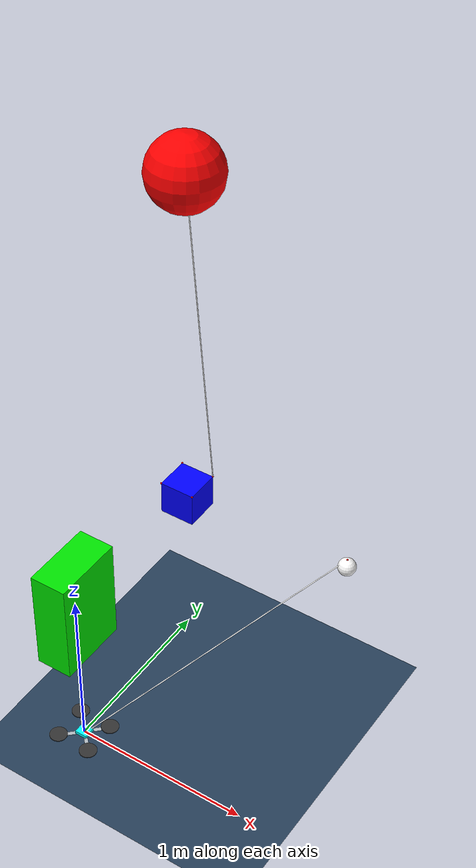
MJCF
<mujoco model="MuJoCo Model">
  <!--Compiler Options-->
  <compiler angle="radian"/>
  <option timestep="0.001" gravity="0 0 -9.81" density="1.225" viscosity="1.8e-05" integrator="RK4" jacobian="sparse">
    <flag energy="enable" contact="enable"/>
  </option>

  <visual>
    <headlight diffuse="0.6 0.6 0.6" ambient="0.3 0.3 0.3" specular="0 0 0"/>
    <rgba haze="0.15 0.25 0.35 1"/>
    <global azimuth="-20" elevation="-20" ellipsoidinertia="true"/>
  </visual>

  <asset>
    <texture type="skybox" builtin="gradient" rgb1="0.3 0.5 0.7" rgb2="0 0 0" width="512" height="3072"/>
    <texture type="2d" name="groundplane" builtin="checker" mark="edge" rgb1="0.2 0.3 0.4" rgb2="0.1 0.2 0.3"
      markrgb="0.8 0.8 0.8" width="300" height="300"/>
    <material name="groundplane" texture="groundplane" texuniform="true" texrepeat="5 5" reflectance="0.2"/>
  </asset>

  <default>
        <site type="sphere" rgba="1 0 0 1" size="0.005"/>
        <tendon limited="true" width="0.003" rgba="1 1 1 1"/>
        <geom friction=".2"/>
  </default>

  <worldbody>
    <light pos="0 0 1.5" dir="0 0 -1" directional="true"/>
    <geom name="floor" size="0 0 0.05" type="plane" material="groundplane"/>

    <camera name="Upper_view" pos="0.0 0.0 6.0" quat="1 0.0 0.0 0.0" mode="trackcom"/>
    <camera name="Track_view" pos="0 -1 .5" quat="0.707 0.70 0.0 0.0" mode="trackcom"/>

    <!-- System Models -->
    <!-- Block fized postion, free rotation -->
    <body name="block_1" pos="0 0 1">
      <joint pos="0 0 0" type="ball" actuatorfrclimited="false" damping="0.03"/>
      <geom name="block_1" size="0.1 0.2 0.3" type="box" rgba="0 0.9 0 1" mass="1.0"/>
    </body>

    <!-- Free body only in xyz axis -->
    <body name="floating_box" pos="0 1 3">
        <joint name="joint_x" pos="0 0 0" type="slide" axis="1 0 0" limited="true" range="-3 3" damping="100"/>
        <joint name="joint_y" pos="0 0 0" type="slide" axis="0 1 0" limited="true" range="-3 3" damping="100"/>
        <joint name="joint_z" pos="0 0 0" type="slide" axis="0 0 1" limited="true" range="-0.5 0.5" damping="100"/>
      <geom name="floating_box" size="0.2" type="sphere" rgba="1 0 0 1"/>
      <site name="origin0" pos="0 0 0"/>
    </body>

    <!-- Free body -->
    <body name="box_3" pos="0 1 1">
      <joint name="free_joint" pos="0 0 0" type="free" damping="1"/>
      <geom name="box_3" size="0.1 0.1 0.1" type="box" rgba="0 0 1 1"/>
      <site name="insertion0" pos="0.1 0.1 0.1"/>
      <site name="insertion1" pos="-0.1 0.1 0.1"/>
      <site name="insertion2" pos="-0.1 -0.1 0.1"/>
      <site name="insertion3" pos="0.1 -0.1 0.1"/>
    </body>

    <!-- Quadrotor body -->
    <body name="drone" pos="0 0 0" euler="0 0 0">
      <joint name="root_drone" type="free" damping="0.03" armature="0" pos="0 0 0"/>
      <!--Friction only for the core of the quadrotor-->
      <geom name="core" type="box" pos="0 0 0" quat="1. 0. 0. 0" size="0.035 0.035 0.015" rgba="1 1 1 0.7" mass=".84" friction="1.0 0.005 0.0001"/>
      <geom name="a00" type="box" pos=".071 0.071 0.0" size="0.05 0.01 0.0025" quat=".924 0.0 0.0 0.383" rgba="1 1 1 0.7" mass=".025"/>
      <geom name="a10" type="box" pos=".071 -0.071 0.0" size="0.05 0.01 0.0025" quat=".383 0.0 0.0 0.924" rgba="1 1 1 0.7" mass=".025"/>
      <geom name="a20" type="box" pos="-0.071 -0.071 0.0" size="0.05 0.01 0.0025" quat="-.383 0.0 0.0 0.924" rgba="1 1 1 0.7" mass=".025"/>
      <geom name="a30" type="box" pos="-.071 0.071 0.0" size="0.05 0.01 0.0025" quat=".924 0.0 0.0 -0.383" rgba="1 1 1 0.7" mass=".025"/>

      <!--   Thruster geometries for collisions since site's are excluded from collision checking   -->
      <geom name="thruster0" type="cylinder" pos=" 0.1 0.1 0.01" size="0.05 0.0025" quat="1.0 0.0 0.0 0." rgba="0.2 0.2 0.2 1" mass=".015"/>
      <geom name="thruster1" type="cylinder" pos=" 0.1 -0.1 0.01" size="0.05 0.0025" quat="1.0 0.0 0.0 0." rgba="0.2 0.2 0.2 1" mass=".015"/>
      <geom name="thruster2" type="cylinder" pos="-0.1 -0.1 0.01" size="0.05 0.0025" quat="1.0 0.0 0.0 0." rgba="0.2 0.2 0.2 1" mass=".015"/>
      <geom name="thruster3" type="cylinder" pos="-0.1 0.1 0.01" size="0.05 0.0025" quat="1.0 0.0 0.0 0." rgba="0.2 0.2 0.2 1" mass=".015"/>

      <!--  Representation of the body frame   -->
      <site name="qcX" type="box" pos="0.05 0.0 0.0" size="0.05 0.005 0.005" quat=" 1.0 0.0 0.0 0." rgba="1 0 0 1"/>
      <site name="qcY" type="box" pos="0.0 0.05 0.0" size="0.05 0.005 0.005" quat=" 0.707 0.0 0.0 0.707" rgba="0 1 0 1"/>
      <site name="qcZ" type="box" pos="0.0 0.0 0.05" size="0.05 0.005 0.005" quat="-0.707 0.0 0.707 0." rgba="0 0 1 1"/>

      <!--   Actuator sites to attach actuators, make it invisible   -->
      <site name="thrust" type="box" pos="0 0 0" size="0.035 0.035 0.015" quat="1.0 0.0 0.0 0." rgba="0 1 1 1"/>
      <site name="rateX" type="box" pos="0 0 0" quat="1. 0. 0. 0." size="0.035 0.035 0.015" rgba="0 1 1 1"/>
      <site name="rateY" type="box" pos="0 0 0" quat="1. 0. 0. 0." size="0.035 0.035 0.015" rgba="0 1 1 1"/>
      <site name="rateZ" type="box" pos="0 0 0" quat="1. 0. 0. 0." size="0.035 0.035 0.015" rgba="0 1 1 1"/>
      <site name="imu" pos="0 0 0"/>

      <site name="payload_point_drone" pos="0.0 0.0 -0.015"/>
    </body>

    <!-- Payloy only in xyz axis -->
    <body name="payload_ball" pos="1 1 1">
      <joint name="payload_joint" pos="0 0 0" type="free" damping="0.5"/>
      <geom name="payload_ball" size="0.05" type="sphere" rgba="1 1 1 1" mass="0.5"/>
      <site name="payload_point" pos="0.0 0.0 0.05"/>
    </body>

  </worldbody>

      <!--  Actuators of the system   -->
<actuator>
    <motor ctrllimited="true" ctrlrange="0 20.0" gear="0 0. 1. 0. 0. 0." site="thrust" name="body_thrust"/>
    <motor ctrllimited="true" ctrlrange="-1 1" gear="0. 0. 0. 1. 0. 0." site="rateX" name="x_moment"/>
    <motor ctrllimited="true" ctrlrange="-1 1" gear="0. 0. 0. 0. 1. 0." site="rateY" name="y_moment"/>
    <motor ctrllimited="true" ctrlrange="-1 1" gear="0. 0. 0. 0. 0. 1." site="rateZ" name="z_moment"/>
</actuator>

<sensor>
    <framequat name="drone_quat" objtype="site" objname="imu" noise="0.001"/>
    <framepos name="drone_position" objtype="site" objname="imu" noise="0.01"/>
    <velocimeter name="drone_linear_velocity" site="imu" noise="0.00"/>
    <gyro name="drone_angular_velocity" site="imu" noise="0.00"/>
    <accelerometer name="drone_linacc" site="imu" noise="0.00"/>
</sensor>

    <tendon>
        <spatial name="rope0" range="0 2">
            <site site="origin0"/>
            <site site="insertion0"/>
        </spatial>
    </tendon>

    <tendon>
        <spatial name="rope1" range="0 2">
            <site site="payload_point_drone"/>
            <site site="payload_point"/>
        </spatial>
    </tendon>

</mujoco>
